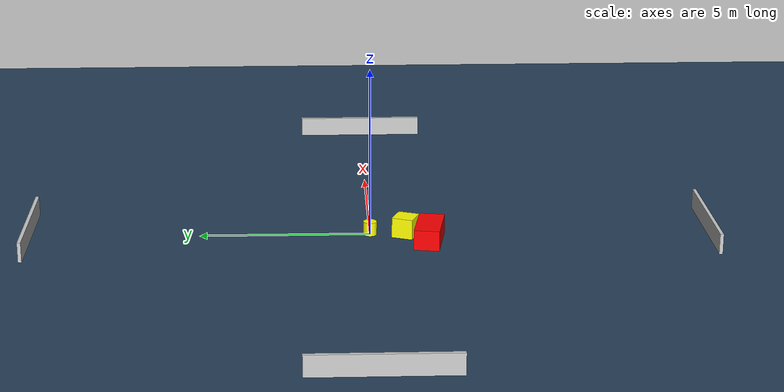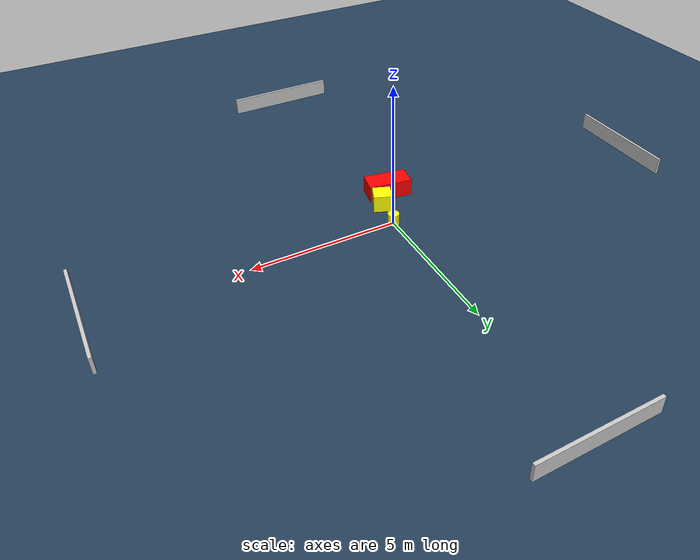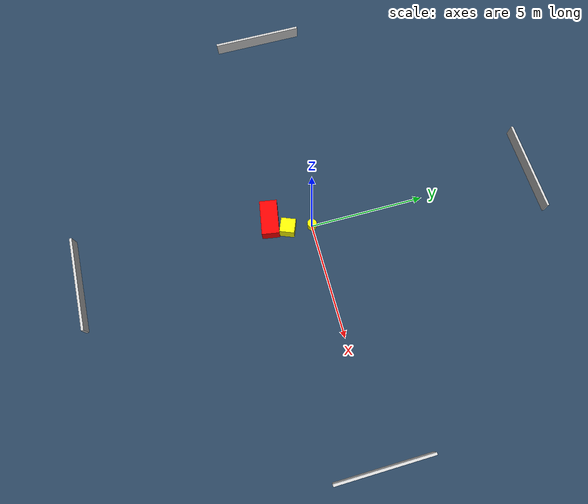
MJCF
<?xml version="1.0" ?>
<mujoco model="generated_environment">
  <option timestep="0.01" integrator="RK4" cone="elliptic"/>
  <default>
    <geom density="1"/>
  </default>
  <asset>
    <texture builtin="gradient" height="3072" name="skybox" rgb1="0.3 0.5 0.7" rgb2="0 0 0" type="skybox" width="512"/>
    <texture builtin="checker" height="300" name="groundplane" rgb1="0.2 0.3 0.4" rgb2="0.1 0.2 0.3" type="2d" width="300"/>
    <material name="groundplane" reflectance="0.2" texrepeat="5 5" texture="groundplane"/>
  </asset>
  <worldbody>
    <light dir="0 0 -1" directional="true" pos="0 0 1.5"/>
    <geom condim="3" friction="0.5 0.005 0.001" material="groundplane" name="floor" pos="0 0 0" size="0 0 0.05" type="plane"/>
    <body name="walls">
      <geom name="wall_1" condim="4" pos="-10.0 0.0 0.3" rgba="0.800000011920929 0.800000011920929 0.800000011920929 1.0" size="0.05 2.0 0.3" type="box"/>
      <geom name="wall_2" condim="4" pos="10.0 0.0 0.3" rgba="0.800000011920929 0.800000011920929 0.800000011920929 1.0" size="0.05 2.0 0.3" type="box"/>
      <geom name="wall_3" condim="4" pos="0.0 -10.0 0.3" rgba="0.800000011920929 0.800000011920929 0.800000011920929 1.0" size="2.0 0.05 0.3" type="box"/>
      <geom name="wall_4" condim="4" pos="0.0 10.0 0.3" rgba="0.800000011920929 0.800000011920929 0.800000011920929 1.0" size="2.0 0.05 0.3" type="box"/>
    </body>
    <body name="robot">
      <joint name="joint_x" type="slide" pos="0 0 0" axis="1 0 0"/>
      <joint name="joint_y" type="slide" pos="0 0 0" axis="0 1 0"/>
      <geom name="robot" type="cylinder" pos="0.0 0.0 0.2" size="0.2 0.2 0.0" mass="5.0" friction="1.0 0.005 0.0001" condim="4" rgba="1.0 1.0 0.0 1.0"/>
    </body>
    <body name="obstacle_1_movable">
      <geom name="obstacle_1_movable" condim="4" pos="-0.12411606590002865 -1.0382789745527339 0.3" euler="0 0 158.00560407680285" friction="0.0 0.005 0.001" rgba="1.0 1.0 0.0 1.0" size="0.3146756062692815 0.31514390545275267 0.3" type="box" mass="0.1"/>
      <joint type="free"/>
    </body>
    <body name="obstacle_2_static">
      <geom name="obstacle_2_static" condim="4" pos="-0.6961769893464268 -1.7042234154467824 0.3" euler="0 0 350.5088265271613" friction="0.0 0.005 0.001" rgba="1.0 0.0 0.0 1.0" size="0.7544290683531816 0.3733853187758802 0.3" type="box"/>
    </body>
  </worldbody>
  <actuator>
    <motor name="actuator_x" joint="joint_x" gear="1" ctrlrange="-1 1"/>
    <motor name="actuator_y" joint="joint_y" gear="1" ctrlrange="-1 1"/>
  </actuator>
</mujoco>
